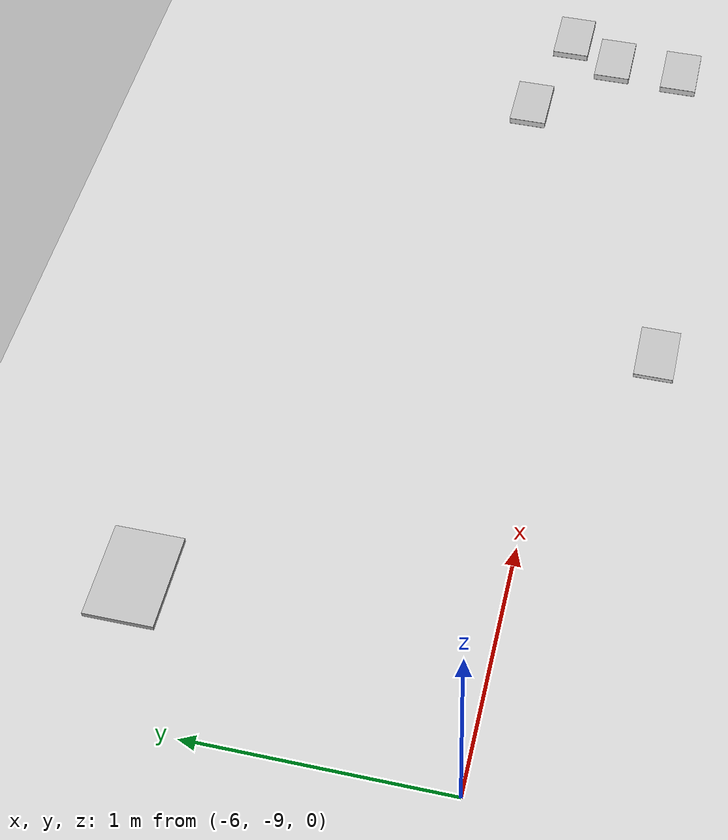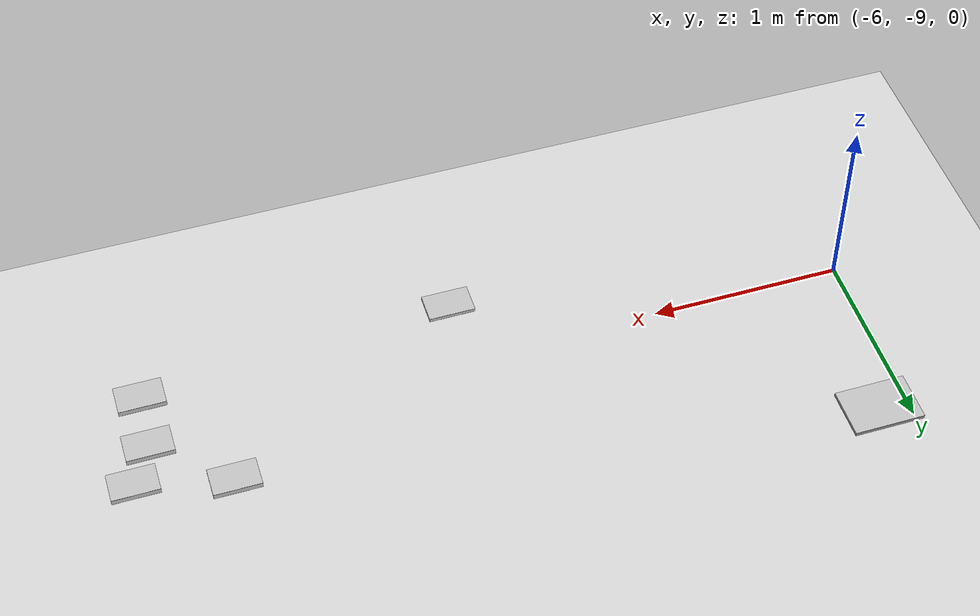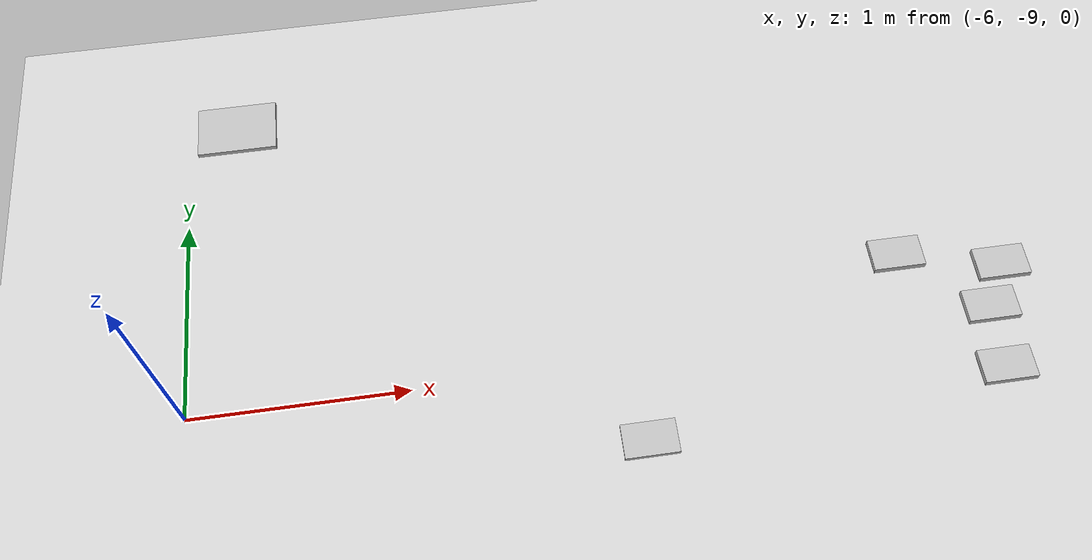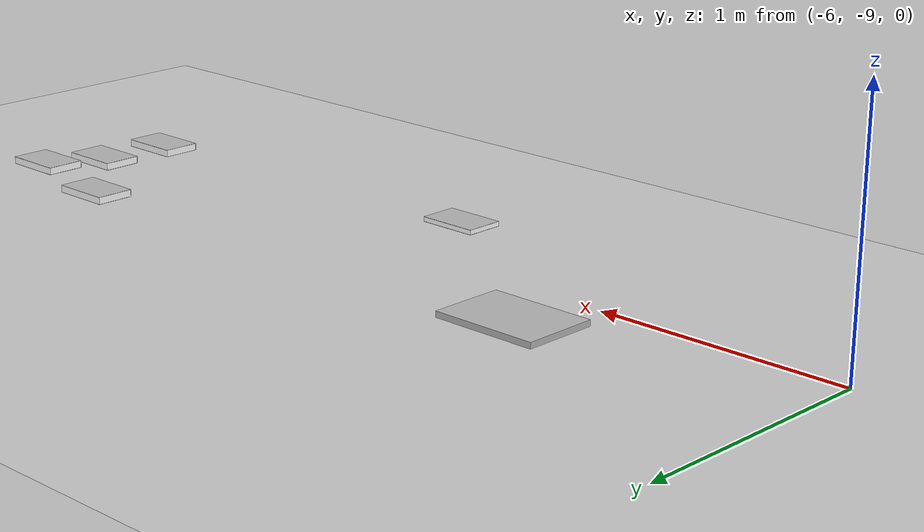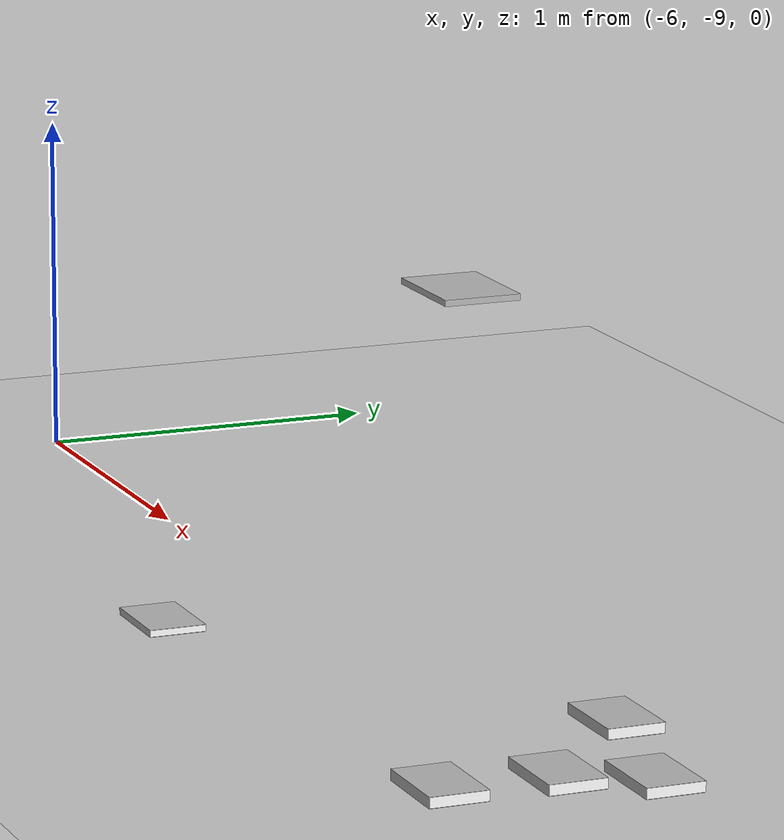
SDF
<sdf version="1.6">
 <world name="default">
  <model name="ground_plane">
   <static>1</static>
   <link name="link">
    <collision name="collision">
     <geometry><plane><normal>0 0 1</normal><size>100 100</size></plane></geometry>
     <surface><friction><ode><mu>1</mu><mu2>1</mu2></ode></friction></surface>
    </collision>
    <visual name="visual">
     <cast_shadows>0</cast_shadows>
     <geometry><plane><normal>0 0 1</normal><size>100 100</size></plane></geometry>
     <material>
      <script><uri>file://media/materials/scripts/gazebo.material</uri><name>Gazebo/Grey</name></script>
     </material>
    </visual>
    <velocity_decay><linear>0</linear><angular>0</angular></velocity_decay>
   </link>
  </model>
  <model name="book_16_0">
   <link name="cover">
    <pose>0 -0.000108 0.015405 0 -0 0</pose>
    <visual name="visual">
     <geometry><box><size>0.245 0.16 0.03</size></box></geometry>
     <material>
      <script>
       <uri>model://book_16/materials/scripts</uri>
       <uri>model://book_16/materials/textures</uri>
       <name>book_16</name>
      </script>
     </material>
    </visual>
    <collision name="collision"><geometry><box><size>0.245 0.16 0.03</size></box></geometry></collision>
   </link>
   <link name="page">
    <pose>0 0.000608 0.015405 0 -0 0</pose>
    <visual name="visual">
     <geometry><box><size>0.24502 0.15862 0.028</size></box></geometry>
     <material>
      <lighting>1</lighting>
      <ambient>1 1 1 1</ambient>
      <diffuse>1 1 1 1</diffuse>
      <specular>0.01 0.01 0.01 1</specular>
      <emissive>0 0 0 1</emissive>
      <shader type="vertex"><normal_map>__default__</normal_map></shader>
     </material>
    </visual>
    <collision name="collision"><geometry><box><size>0.245 0.16 0.03</size></box></geometry></collision>
   </link>
   <static>1</static>
   <pose>-2.21542 -8.74573 0 0 -0 0</pose>
  </model>
  <model name="book_13">
   <link name="cover">
    <pose>0 -0.000108 0.015405 0 -0 0</pose>
    <visual name="visual">
     <geometry><box><size>0.245 0.16 0.03</size></box></geometry>
     <material>
      <script>
       <uri>model://book_13/materials/scripts</uri>
       <uri>model://book_13/materials/textures</uri>
       <name>book_13</name>
      </script>
     </material>
    </visual>
    <collision name="collision"><geometry><box><size>0.245 0.16 0.03</size></box></geometry></collision>
   </link>
   <link name="page">
    <pose>0 0.000608 0.015405 0 -0 0</pose>
    <visual name="visual">
     <geometry><box><size>0.24502 0.15862 0.028</size></box></geometry>
     <material>
      <lighting>1</lighting>
      <ambient>1 1 1 1</ambient>
      <diffuse>1 1 1 1</diffuse>
      <specular>0.01 0.01 0.01 1</specular>
      <emissive>0 0 0 1</emissive>
      <shader type="vertex"><normal_map>__default__</normal_map></shader>
     </material>
    </visual>
    <collision name="collision"><geometry><box><size>0.245 0.16 0.03</size></box></geometry></collision>
   </link>
   <static>1</static>
   <pose>-2.32837 -8.95581 0 0 -0 0</pose>
  </model>
  <model name="book_12_0">
   <link name="cover">
    <pose>0 -0.000108 0.015405 0 -0 0</pose>
    <visual name="visual">
     <geometry><box><size>0.245 0.16 0.03</size></box></geometry>
     <material>
      <script>
       <uri>model://book_12/materials/scripts</uri>
       <uri>model://book_12/materials/textures</uri>
       <name>book_12</name>
      </script>
     </material>
    </visual>
    <collision name="collision"><geometry><box><size>0.245 0.16 0.03</size></box></geometry></collision>
   </link>
   <link name="page">
    <pose>0 0.000608 0.015405 0 -0 0</pose>
    <visual name="visual">
     <geometry><box><size>0.24502 0.15862 0.028</size></box></geometry>
     <material>
      <lighting>1</lighting>
      <ambient>1 1 1 1</ambient>
      <diffuse>1 1 1 1</diffuse>
      <specular>0.01 0.01 0.01 1</specular>
      <emissive>0 0 0 1</emissive>
      <shader type="vertex"><normal_map>__default__</normal_map></shader>
     </material>
    </visual>
    <collision name="collision"><geometry><box><size>0.245 0.16 0.03</size></box></geometry></collision>
   </link>
   <static>1</static>
   <pose>-2.34646 -9.26379 0 0 -0 0</pose>
  </model>
  <model name="book_19">
   <link name="cover">
    <pose>0 -0.000108 0.015405 0 -0 0</pose>
    <visual name="visual">
     <geometry><box><size>0.245 0.16 0.03</size></box></geometry>
     <material>
      <script>
       <uri>model://book_19/materials/scripts</uri>
       <uri>model://book_19/materials/textures</uri>
       <name>book_19</name>
      </script>
     </material>
    </visual>
    <collision name="collision"><geometry><box><size>0.245 0.16 0.03</size></box></geometry></collision>
   </link>
   <link name="page">
    <pose>0 0.000608 0.015405 0 -0 0</pose>
    <visual name="visual">
     <geometry><box><size>0.24502 0.15862 0.028</size></box></geometry>
     <material>
      <lighting>1</lighting>
      <ambient>1 1 1 1</ambient>
      <diffuse>1 1 1 1</diffuse>
      <specular>0.01 0.01 0.01 1</specular>
      <emissive>0 0 0 1</emissive>
      <shader type="vertex"><normal_map>__default__</normal_map></shader>
     </material>
    </visual>
    <collision name="collision"><geometry><box><size>0.245 0.16 0.03</size></box></geometry></collision>
   </link>
   <static>1</static>
   <pose>-2.69124 -8.62993 0 0 -0 0</pose>
  </model>
  <model name="newspaper_1">
   <link name="link_0">
    <visual name="visual">
     <geometry><box><size>0.35 0.25 0.02</size></box></geometry>
     <material>
      <script>
       <uri>model://newspaper_1/materials/scripts</uri>
       <uri>model://newspaper_1/materials/textures</uri>
       <name>newspaper_1</name>
      </script>
     </material>
    </visual>
    <collision name="collision"><geometry><box><size>0.35 0.25 0.02</size></box></geometry></collision>
   </link>
   <static>1</static>
   <pose>-5.65633 -7.79435 0.455927 0 -0 0</pose>
  </model>
  <model name="book_6_0">
   <link name="cover">
    <pose>0 -0.000108 0.01 0 -0 0</pose>
    <visual name="visual">
     <geometry><box><size>0.245 0.16 0.02</size></box></geometry>
     <material>
      <script>
       <uri>model://book_6/materials/scripts</uri>
       <uri>model://book_6/materials/textures</uri>
       <name>book_6</name>
      </script>
     </material>
    </visual>
    <collision name="collision"><geometry><box><size>0.245 0.16 0.02</size></box></geometry></collision>
   </link>
   <link name="page">
    <pose>0 0.000608 0.01 0 -0 0</pose>
    <visual name="visual">
     <geometry><box><size>0.24502 0.15862 0.018</size></box></geometry>
     <material>
      <lighting>1</lighting>
      <ambient>1 1 1 1</ambient>
      <diffuse>1 1 1 1</diffuse>
      <specular>0.01 0.01 0.01 1</specular>
      <emissive>0 0 0 1</emissive>
      <shader type="vertex"><normal_map>__default__</normal_map></shader>
     </material>
    </visual>
    <collision name="collision"><geometry><box><size>0.245 0.16 0.018</size></box></geometry></collision>
   </link>
   <static>1</static>
   <pose>-3.99152 -9.38505 0 0 -0 0</pose>
  </model>
 </world>
</sdf>
